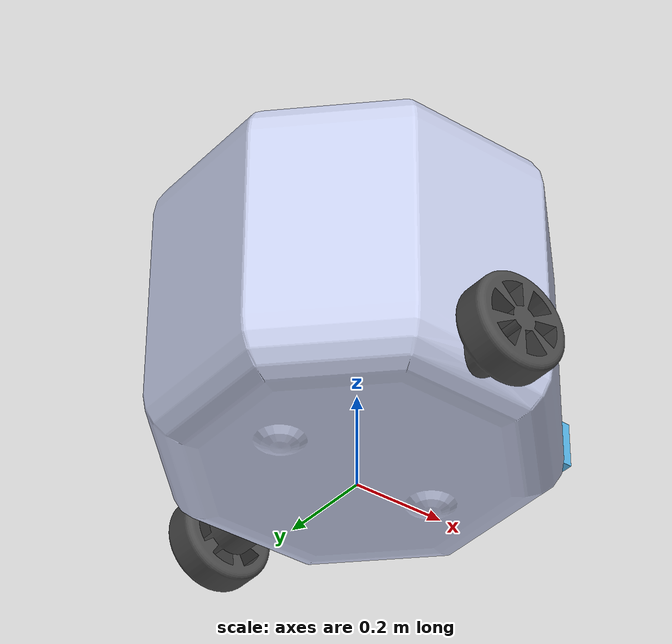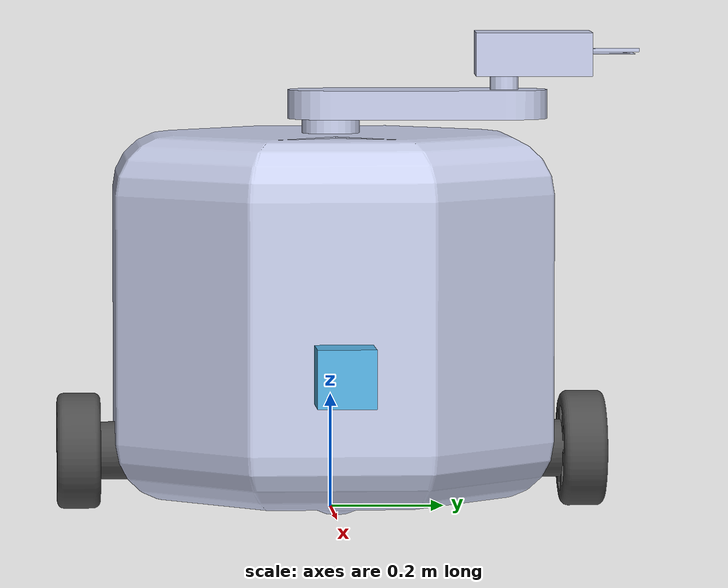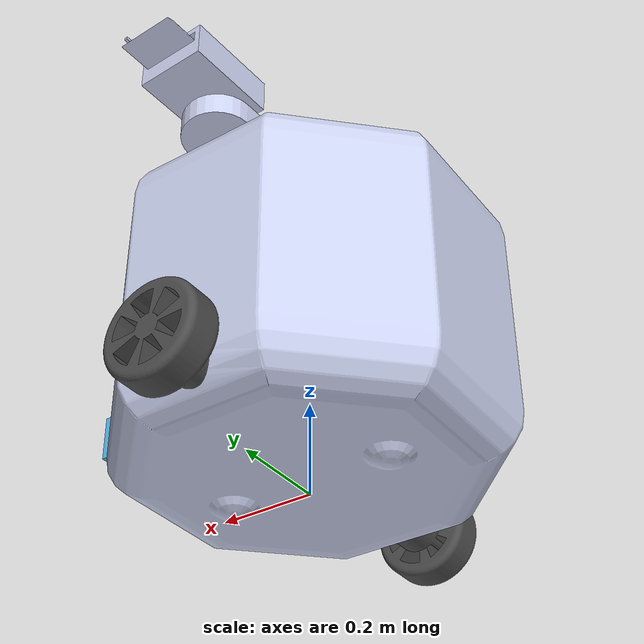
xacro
<?xml version="1.0"?>
<!-- Name your robot here -->
<robot name ="modified_robo9_with_planning" xmlns:xacro="http://wiki.ros.org/xacro">

<!-- Include your urdf files here -->
	<!-- Include Robot's urdf filepath -->
	<!-- Include Lidar's urdf filepath -->
	<xacro:include filename="$(find modified_robo9_with_planning)/urdf/modified_robo9_with_planning.urdf"/>
	<xacro:macro name="box_inertia" params="mass x y z">
        <inertia ixx="${mass*(y*y+z*z)/12}" ixy = "0" ixz = "0" iyy="${mass*(x*x+z*z)/12}" iyz = "0" izz="${mass*(x*x+y*y)/12}" />
    </xacro:macro>

	<!-- IMU Link reference (https://navigation.ros.org/setup_guides/odom/setup_odom.html) -->
	<link name="imu_link">
		<visual>
			<geometry>
			<box size="0.1 0.1 0.1"/>
			</geometry>
		</visual>

		<collision>
			<geometry>
			<box size="0.1 0.1 0.1"/>
			</geometry>
		</collision>

	</link>

	<!-- Downbelow is the imu sensor for robot (http://gazebosim.org/tutorials?tut=ros_gzplugins#IMUsensor(GazeboRosImuSensor)) -->
	<gazebo reference="imu_link">
		<gravity>true</gravity>
		<sensor name="imu_sensor" type="imu">
		<always_on>true</always_on>
		<update_rate>40</update_rate>
		<visualize>true</visualize>
		<plugin filename="libgazebo_ros_imu_sensor.so" name="imu_plugin">
			<topicName>/modified_robo9_with_planning/imu</topicName>
			<bodyName>imu_link</bodyName>
			<updateRateHZ>10.0</updateRateHZ>
			<gaussianNoise>0.0</gaussianNoise>
			<xyzOffset>0 0 0</xyzOffset>
			<rpyOffset>0 0 0</rpyOffset>
			<frameName>imu_link</frameName>
			<initialOrientationAsReference>false</initialOrientationAsReference>
		</plugin>
		<pose>0 0 0 0 0 0</pose>
		</sensor>
	</gazebo>

<!--  Gazebo plugin for control here is already added for you -->
	<gazebo>
		<plugin name="gazebo_ros_control" filename="libgazebo_ros_control.so">
			<robotNamespace>/modified_robo9_with_planning</robotNamespace>
			<robotSimType>gazebo_ros_control/DefaultRobotHWSim</robotSimType>
			<legacyModeNS>true</legacyModeNS>
		</plugin>
	</gazebo>

<!-- Create a joint between your robot and sensor -->
	<joint
		name="imu_chasis_joint"
		type="fixed">
		<origin xyz =".45 0 .27" rpy="0 0 0" />
		<child link = "imu_link" />
		<parent link="base_link" />
	</joint>

<!-- Differential Drive -->
	<gazebo>
		<plugin name="differential_drive_controller" filename="libgazebo_ros_diff_drive.so">
			<alwaysOn>true</alwaysOn>
			<legacyMode>false</legacyMode>
			<updateRate>30</updateRate>
			<leftJoint>left_wheel_joint</leftJoint>
			<rightJoint>right_wheel_joint</rightJoint>
			<wheelSeparation>0.762</wheelSeparation>
			<!-- in to m wheel base (30 in -> 0.762 m) -->
			<wheelDiameter>0.2032</wheelDiameter>
			<!-- 8 in to m-> 0.2032 -->
			<wheelTorque>40</wheelTorque>
			<wheelAcceleration>5.0</wheelAcceleration>
			<commandTopic>/modified_robo9_with_planning/cmd_vel</commandTopic>
			<odometryTopic>/modified_robo9_with_planning/odom</odometryTopic>
			<odometryFrame>odom</odometryFrame>
			<robotBaseFrame>dummy_link</robotBaseFrame>
		</plugin>
	</gazebo>
</robot>

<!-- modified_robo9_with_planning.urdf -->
<robot
  name="modified_robo9_with_planning">
  <link name="dummy_link" />

  <joint name="dummy_link_to_base_link" type="fixed">
    <parent link="dummy_link"/>
    <child link="base_link"/>
  </joint>
  <link
    name="base_link">
    <inertial>
      <origin
        xyz="-0.000234166671283786 0 0.341965241299168"
        rpy="0 0 0" />
      <mass
        value="291.564682437976" />
      <inertia
        ixx="20.0527856871514"
        ixy="-7.50635775529426E-06"
        ixz="0.0200068652527846"
        iyy="20.1739356871347"
        iyz="-2.14957033006662E-15"
        izz="21.8510802863288" />
    </inertial>
    <visual>
      <origin
        xyz="0 0 0"
        rpy="0 0 0" />
      <geometry>
        <mesh
          filename="package://modified_robo9_with_planning/meshes/base_link.STL" />
      </geometry>
      <material
        name="">
        <color
          rgba="0.792156862745098 0.819607843137255 0.933333333333333 1" />
      </material>
    </visual>
    <collision>
      <origin
        xyz="0 0 0"
        rpy="0 0 0" />
      <geometry>
        <mesh
          filename="package://modified_robo9_with_planning/meshes/base_link.STL" />
      </geometry>
    </collision>
  </link>
  <link
    name="left_wheel">
    <inertial>
      <origin
        xyz="0 -5.55111512312578E-17 -0.896942402108544"
        rpy="0 0 0" />
      <mass
        value="2.42815284027599" />
      <inertia
        ixx="0.00682217388768063"
        ixy="-1.15245136693123E-18"
        ixz="6.54305795555698E-19"
        iyy="0.00682217388768063"
        iyz="1.50075961333382E-19"
        izz="0.0107400873808283" />
    </inertial>
    <visual>
      <origin
        xyz="0 0 0"
        rpy="0 0 0" />
      <geometry>
        <mesh
          filename="package://modified_robo9_with_planning/meshes/left_wheel.STL" />
      </geometry>
      <material
        name="">
        <color
          rgba="0.298039215686275 0.298039215686275 0.298039215686275 1" />
      </material>
    </visual>
    <collision>
      <origin
        xyz="0 0 0"
        rpy="0 0 0" />
      <geometry>
        <mesh
          filename="package://modified_robo9_with_planning/meshes/left_wheel.STL" />
      </geometry>
    </collision>
  </link>
  <joint
    name="left_wheel_joint"
    type="continuous">
    <origin
      xyz="0 0.482600000000004 0.1016"
      rpy="-1.5707963267949 0 0" />
    <parent
      link="base_link" />
    <child
      link="left_wheel" />
    <axis
      xyz="0 0 1" />
  </joint>
  <link
    name="right_wheel">
    <inertial>
      <origin
        xyz="-2.22044604925031E-16 0 -0.896942402108544"
        rpy="0 0 0" />
      <mass
        value="2.42815284027599" />
      <inertia
        ixx="0.00682217388768063"
        ixy="-1.88032045455964E-18"
        ixz="-3.31900532483183E-20"
        iyy="0.00682217388768064"
        iyz="-9.58168820167435E-20"
        izz="0.0107400873808283" />
    </inertial>
    <visual>
      <origin
        xyz="0 0 0"
        rpy="0 0 0" />
      <geometry>
        <mesh
          filename="package://modified_robo9_with_planning/meshes/right_wheel.STL" />
      </geometry>
      <material
        name="">
        <color
          rgba="0.298039215686275 0.298039215686275 0.298039215686275 1" />
      </material>
    </visual>
    <collision>
      <origin
        xyz="0 0 0"
        rpy="0 0 0" />
      <geometry>
        <mesh
          filename="package://modified_robo9_with_planning/meshes/right_wheel.STL" />
      </geometry>
    </collision>
  </link>
  <joint
    name="right_wheel_joint"
    type="continuous">
    <origin
      xyz="0 -0.482600000000004 0.1016"
      rpy="1.5707963267949 0 0" />
    <parent
      link="base_link" />
    <child
      link="right_wheel" />
    <axis
      xyz="0 0 -1" />
  </joint>
  <link
    name="base_to_first_link">
    <inertial>
      <origin
        xyz="-5.55111512312578E-17 -1.11022302462516E-16 -0.1524"
        rpy="0 0 0" />
      <mass
        value="2.47111103406268" />
      <inertia
        ixx="0.0207254059315664"
        ixy="-1.54905385393866E-19"
        ixz="-1.83677921854158E-34"
        iyy="0.0207254059315664"
        iyz="-6.88468379528296E-20"
        izz="0.00318852398947175" />
    </inertial>
    <visual>
      <origin
        xyz="0 0 0"
        rpy="0 0 0" />
      <geometry>
        <mesh
          filename="package://modified_robo9_with_planning/meshes/base_to_first_link.STL" />
      </geometry>
      <material
        name="">
        <color
          rgba="0.792156862745098 0.819607843137255 0.933333333333333 1" />
      </material>
    </visual>
    <collision>
      <origin
        xyz="0 0 0"
        rpy="0 0 0" />
      <geometry>
        <mesh
          filename="package://modified_robo9_with_planning/meshes/base_to_first_link.STL" />
      </geometry>
    </collision>
  </link>
  <joint
    name="base_to_first_link_joint"
    type="fixed">
    <origin
      xyz="0 0 0.7112"
      rpy="0 0 0" />
    <parent
      link="base_link" />
    <child
      link="base_to_first_link" />
    <axis
      xyz="0 0 0" />
  </joint>
  <link
    name="first_link">
    <inertial>
      <origin
        xyz="0.00887202489217992 0.166951784287116 -1.02122346670472"
        rpy="0 0 0" />
      <mass
        value="3.1834408940209" />
      <inertia
        ixx="0.0478820519866207"
        ixy="-0.00218702423761148"
        ixz="-1.49937532359432E-05"
        iyy="0.00684333918252238"
        iyz="-0.000282149101960674"
        izz="0.0528634241141966" />
    </inertial>
    <visual>
      <origin
        xyz="0 0 0"
        rpy="0 0 0" />
      <geometry>
        <mesh
          filename="package://modified_robo9_with_planning/meshes/first_link.STL" />
      </geometry>
      <material
        name="">
        <color
          rgba="0.792156862745098 0.819607843137255 0.933333333333333 1" />
      </material>
    </visual>
    <collision>
      <origin
        xyz="0 0 0"
        rpy="0 0 0" />
      <geometry>
        <mesh
          filename="package://modified_robo9_with_planning/meshes/first_link.STL" />
      </geometry>
    </collision>
  </link>
  <joint
    name="first_link_joint"
    type="continuous">
    <origin
      xyz="0 0 1.0236880255875"
      rpy="0 0 0" />
    <parent
      link="base_to_first_link" />
    <child
      link="first_link" />
    <axis
      xyz="0 0 1" />
  </joint>
        <transmission name="trans_first_link">
     <type>transmission_interface/SimpleTransmission</type>
     <joint name="first_link_joint">
       <hardwareInterface>hardware_interface/EffortJointInterface</hardwareInterface>
     </joint>
     <actuator name="first_link_motor">
       <mechanicalReduction>10</mechanicalReduction>
       <hardwareInterface>hardware_interface/EffortJointInterface</hardwareInterface>
    </actuator>
  </transmission>
  <link
    name="second_link">
    <inertial>
      <origin
        xyz="0.00255294857603322 0.0480408165150327 0.00925479847334798"
        rpy="0 0 0" />
      <mass
        value="1.7347084961237" />
      <inertia
        ixx="0.00731696518042928"
        ixy="-0.000136416141636608"
        ixz="9.2876719216566E-06"
        iyy="0.00475716599659306"
        iyz="0.000174773337320167"
        izz="0.0101503487353134" />
    </inertial>
    <visual>
      <origin
        xyz="0 0 0"
        rpy="0 0 0" />
      <geometry>
        <mesh
          filename="package://modified_robo9_with_planning/meshes/second_link.STL" />
      </geometry>
      <material
        name="">
        <color
          rgba="0.792156862745098 0.819607843137255 0.933333333333333 1" />
      </material>
    </visual>
    <collision>
      <origin
        xyz="0 0 0"
        rpy="0 0 0" />
      <geometry>
        <mesh
          filename="package://modified_robo9_with_planning/meshes/second_link.STL" />
      </geometry>
    </collision>
  </link>
  <joint
    name="second_link_joint"
    type="fixed">
    <origin
      xyz="0.0161746276486489 0.304370533101395 -0.947488025587499"
      rpy="0 0 0" />
    <parent
      link="first_link" />
    <child
      link="second_link" />
    <axis
      xyz="0 0 0" />
  </joint>
  <link
    name="end_effector_link">
    <inertial>
      <origin
        xyz="-8.11305050484323E-05 -0.00702550005762381 0.0943050421661527"
        rpy="0 0 0" />
      <mass
        value="0.287447503704032" />
      <inertia
        ixx="0.00103661826081033"
        ixy="3.87126226374111E-10"
        ixz="1.97620720820864E-06"
        iyy="0.0014160265512004"
        iyz="2.00867587917765E-05"
        izz="0.000387513820386799" />
    </inertial>
    <visual>
      <origin
        xyz="0 0 0"
        rpy="0 0 0" />
      <geometry>
        <mesh
          filename="package://modified_robo9_with_planning/meshes/end_effector_link.STL" />
      </geometry>
      <material
        name="">
        <color
          rgba="0.792156862745098 0.819607843137255 0.933333333333333 1" />
      </material>
    </visual>
    <collision>
      <origin
        xyz="0 0 0"
        rpy="0 0 0" />
      <geometry>
        <mesh
          filename="package://modified_robo9_with_planning/meshes/end_effector_link.STL" />
      </geometry>
    </collision>
  </link>
  <joint
    name="end_effector_joint"
    type="prismatic">
    <origin
      xyz="-0.0013479 -0.025364 0.0254"
      rpy="1.5708 0 3.0885" />
    <parent
      link="second_link" />
    <child
      link="end_effector_link" />
    <axis
      xyz="0 0 1" />
    <limit
      lower="0"
      upper="0.254"
      effort="100"
      velocity="100" />
  </joint>
          <transmission name="trans_end_effector_link">
     <type>transmission_interface/SimpleTransmission</type>
     <joint name="end_effector_joint">
       <hardwareInterface>hardware_interface/EffortJointInterface</hardwareInterface>
     </joint>
     <actuator name="end_effector_motor">
       <mechanicalReduction>10</mechanicalReduction>
       <hardwareInterface>hardware_interface/EffortJointInterface</hardwareInterface>
    </actuator>
  </transmission>
  <link
    name="tray_diffusor">
    <inertial>
      <origin
        xyz="-0.0259895460961588 -0.00224101216839243 0.00327376150152037"
        rpy="0 0 0" />
      <mass
        value="0.620637961492778" />
      <inertia
        ixx="2.4803545805323E-07"
        ixy="-2.30126990196352E-07"
        ixz="-1.6086888268435E-08"
        iyy="5.52745746563034E-06"
        iyz="-1.35859441652098E-09"
        izz="5.73338557318217E-06" />
    </inertial>
    <visual>
      <origin
        xyz="0 0 0"
        rpy="0 0 0" />
      <geometry>
        <mesh
          filename="package://modified_robo9_with_planning/meshes/tray_diffusor.STL" />
      </geometry>
      <material
        name="">
        <color
          rgba="0.792156862745098 0.819607843137255 0.933333333333333 1" />
      </material>
    </visual>
    <collision>
      <origin
        xyz="0 0 0"
        rpy="0 0 0" />
      <geometry>
        <mesh
          filename="package://modified_robo9_with_planning/meshes/tray_diffusor.STL" />
      </geometry>
    </collision>
  </link>
  <joint
    name="tray_diffusor_joint"
    type="revolute">
    <origin
      xyz="-0.050544 -0.00889 0.17146"
      rpy="1.5708 -0.053091 3.1416" />
    <parent
      link="end_effector_link" />
    <child
      link="tray_diffusor" />
    <axis
      xyz="0 0 1" />
    <limit
      lower="3.14"
      upper="6.28"
      effort="100"
      velocity="100" />
  </joint>
        <transmission name="trans_tray_diffusor_link">
     <type>transmission_interface/SimpleTransmission</type>
     <joint name="tray_diffusor_joint">
       <hardwareInterface>hardware_interface/EffortJointInterface</hardwareInterface>
     </joint>
     <actuator name="tray_diffusor_motor">
       <mechanicalReduction>10</mechanicalReduction>
       <hardwareInterface>hardware_interface/EffortJointInterface</hardwareInterface>
    </actuator>
  </transmission>
</robot>
